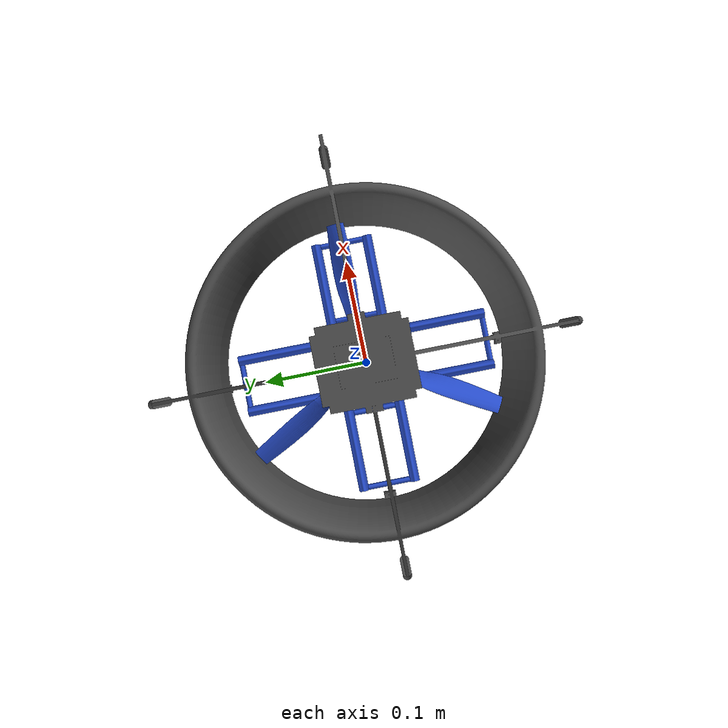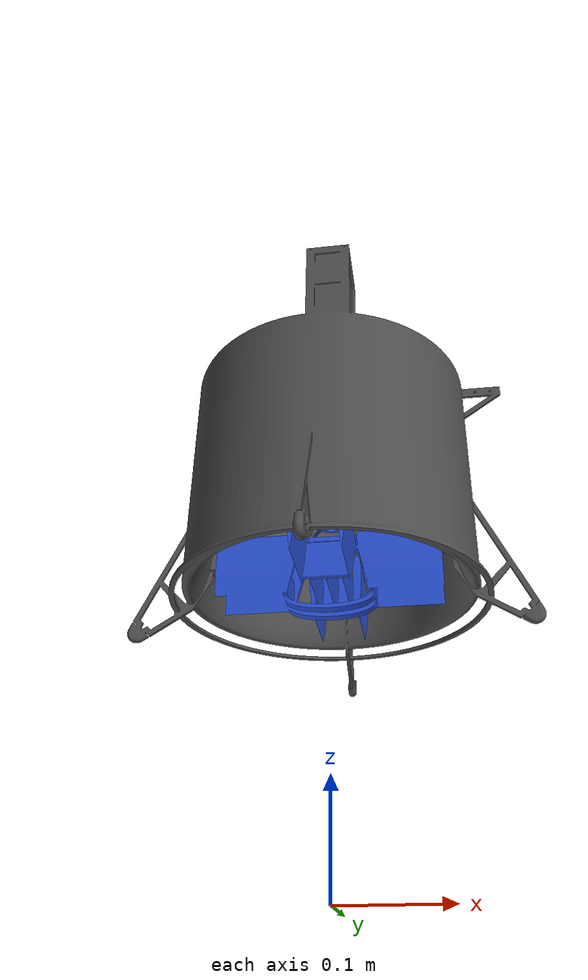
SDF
<?xml version='1.0' encoding='utf-8'?>
<sdf version="1.9">
  <model name="ductedfan2">
    <pose>0 0 0.5 0 0 0</pose>
    <link name="base_link">
      <pose>0 0 0 0 0 0</pose>
      <inertial>
        <mass>1.51082</mass>
        <inertia>
          <ixx>0.0276508</ixx>
          <ixy>0</ixy>
          <ixz>0.00026669</ixz>
          <iyy>0.0275263</iyy>
          <iyz>0.00028741</iyz>
          <izz>0.00619679</izz>
        </inertia>
        <pose>-4.1e-05 -7.6e-05 0.042069 0 -0 0</pose>
      </inertial>
      <collision name="base_link_collision">
        <geometry>
          <box>
            <size>0.25 0.25 0.52</size>
          </box>
        </geometry>
      </collision>
      <visual name="base_link_visual">
        <pose>0.0 0 -0.0 0 0 0</pose>
        <geometry>
          <mesh>
            <scale>1 1 1</scale>
            <uri>model://ductedfan2/meshes/DF - Product-gazebo-1.STL</uri>
          </mesh>
        </geometry>
        <material>
          <script>
            <name>Gazebo/DarkGrey</name>
            <uri>file://media/materials/scripts/gazebo.material</uri>
          </script>
        </material>
      </visual>
      <gravity>1</gravity>
      <velocity_decay />
      <self_collide>0</self_collide>
      <sensor name="imu_sensor" type="imu">
        <gz_frame_id>base_link</gz_frame_id>
        <always_on>1</always_on>
        <update_rate>250</update_rate>
        <imu>
          <angular_velocity>
            <x>
              <noise type="gaussian">
                <mean>0</mean>
                <stddev>0.0003394</stddev>
                <dynamic_bias_stddev>3.8785e-05</dynamic_bias_stddev>
                <dynamic_bias_correlation_time>1000</dynamic_bias_correlation_time>
              </noise>
            </x>
            <y>
              <noise type="gaussian">
                <mean>0</mean>
                <stddev>0.0003394</stddev>
                <dynamic_bias_stddev>3.8785e-05</dynamic_bias_stddev>
                <dynamic_bias_correlation_time>1000</dynamic_bias_correlation_time>
              </noise>
            </y>
            <z>
              <noise type="gaussian">
                <mean>0</mean>
                <stddev>0.0003394</stddev>
                <dynamic_bias_stddev>3.8785e-05</dynamic_bias_stddev>
                <dynamic_bias_correlation_time>1000</dynamic_bias_correlation_time>
              </noise>
            </z>
          </angular_velocity>
          <linear_acceleration>
            <x>
              <noise type="gaussian">
                <mean>0</mean>
                <stddev>0.004</stddev>
                <dynamic_bias_stddev>0.006</dynamic_bias_stddev>
                <dynamic_bias_correlation_time>300</dynamic_bias_correlation_time>
              </noise>
            </x>
            <y>
              <noise type="gaussian">
                <mean>0</mean>
                <stddev>0.004</stddev>
                <dynamic_bias_stddev>0.006</dynamic_bias_stddev>
                <dynamic_bias_correlation_time>300</dynamic_bias_correlation_time>
              </noise>
            </y>
            <z>
              <noise type="gaussian">
                <mean>0</mean>
                <stddev>0.004</stddev>
                <dynamic_bias_stddev>0.006</dynamic_bias_stddev>
                <dynamic_bias_correlation_time>300</dynamic_bias_correlation_time>
              </noise>
            </z>
          </linear_acceleration>
        </imu>
      </sensor>
      <sensor name="air_pressure_sensor" type="air_pressure">
        <gz_frame_id>base_link</gz_frame_id>
        <always_on>1</always_on>
        <update_rate>50</update_rate>
        <air_pressure>
          <pressure>
            <noise type="gaussian">
              <mean>0</mean>
              <stddev>0.01</stddev>
            </noise>
          </pressure>
        </air_pressure>
      </sensor>
      <sensor name="magnetometer_sensor" type="magnetometer">
        <gz_frame_id>base_link</gz_frame_id>
        <always_on>1</always_on>
        <update_rate>100</update_rate>
        <magnetometer>
          <x>
            <noise type="gaussian">
              <stddev>0.0001</stddev>
            </noise>
          </x>
          <y>
            <noise type="gaussian">
              <stddev>0.0001</stddev>
            </noise>
          </y>
          <z>
            <noise type="gaussian">
              <stddev>0.0001</stddev>
            </noise>
          </z>
        </magnetometer>
      </sensor>
      <sensor name="navsat_sensor" type="navsat">
        <gz_frame_id>base_link</gz_frame_id>
        <always_on>1</always_on>
        <update_rate>30</update_rate>
      </sensor>
    </link>
    <link name="imu_link">
      <pose>0 0 0 0 0 0</pose>
      <inertial>
        <pose>0 0 0 0 0 0</pose>
        <mass>0.015</mass>
        <inertia>
          <ixx>1e-05</ixx>
          <ixy>0</ixy>
          <ixz>0</ixz>
          <iyy>1e-05</iyy>
          <iyz>0</iyz>
          <izz>1e-05</izz>
        </inertia>
      </inertial>
    </link>
    <joint name="imu_joint" type="revolute">
      <child>imu_link</child>
      <parent>base_link</parent>
      <axis>
        <xyz>1 0 0</xyz>
        <limit>
          <lower>0</lower>
          <upper>0</upper>
          <effort>0</effort>
          <velocity>0</velocity>
        </limit>
        <dynamics>
          <spring_reference>0</spring_reference>
          <spring_stiffness>0</spring_stiffness>
        </dynamics>
      </axis>
    </joint>
    <link name="airspeed_link">
      <pose>0 0 0 0 0 0</pose>
      <inertial>
        <pose>0 0 0 0 0 0</pose>
        <mass>0.015</mass>
        <inertia>
          <ixx>1e-05</ixx>
          <ixy>0</ixy>
          <ixz>0</ixz>
          <iyy>1e-05</iyy>
          <iyz>0</iyz>
          <izz>1e-05</izz>
        </inertia>
      </inertial>
      <sensor name="air_speed" type="air_speed">
        <always_on>1</always_on>
        <update_rate>50</update_rate>
        <air_speed>
          <pressure>
            <noise type="gaussian">
              <mean>0</mean>
              <stddev>0.01</stddev>
            </noise>
          </pressure>
        </air_speed>
      </sensor>
    </link>
    <joint name="airspeed_joint" type="revolute">
      <child>airspeed_link</child>
      <parent>base_link</parent>
      <axis>
        <xyz>1 0 0</xyz>
        <limit>
          <lower>0</lower>
          <upper>0</upper>
          <effort>0</effort>
          <velocity>0</velocity>
        </limit>
        <dynamics>
          <spring_reference>0</spring_reference>
          <spring_stiffness>0</spring_stiffness>
        </dynamics>
      </axis>
    </joint>
    <link name="cspitch">
      <inertial>
        <mass>0.149682</mass>
        <inertia>
          <ixx>0.00066011</ixx>
          <ixy>0</ixy>
          <ixz>0</ixz>
          <iyy>8.5e-05</iyy>
          <iyz>0</iyz>
          <izz>0.000689</izz>
        </inertia>
        <pose>0.000401 0 -0.210756 0 -0 0</pose>
      </inertial>
      <pose>0 0 0 0 -0 0</pose>
      <gravity>1</gravity>
      <self_collide>0</self_collide>
      <kinematic>0</kinematic>
      <enable_wind>0</enable_wind>
      <visual name="visual">
        <pose>0 0 0 0 -0 0</pose>
        <geometry>
          <mesh>
            <uri>model://ductedfan2/meshes/DF - control surface-60-2-1.STL</uri>
            <scale>1 1 1</scale>
          </mesh>
        </geometry>
        <material>
          <script>
            <name>Gazebo/Blue</name>
            <uri>file://media/materials/scripts/gazebo.material</uri>
          </script>
        </material>
        <transparency>0</transparency>
        <cast_shadows>1</cast_shadows>
      </visual>
    </link>
    <link name="csroll">
      <inertial>
        <mass>0.138453</mass>
        <inertia>
          <ixx>9.877e-05</ixx>
          <ixy>0</ixy>
          <ixz>0</ixz>
          <iyy>0.00067119</iyy>
          <iyz>0</iyz>
          <izz>0.00068256</izz>
        </inertia>
        <pose>0 0.000824 -0.20992 0 -0 0</pose>
      </inertial>
      <pose>0 0 0 0 -0 0</pose>
      <gravity>1</gravity>
      <self_collide>0</self_collide>
      <kinematic>0</kinematic>
      <enable_wind>0</enable_wind>
      <visual name="visual">
        <pose>0 0 0 0 -0 0</pose>
        <geometry>
          <mesh>
            <uri>model://ductedfan2/meshes/DF - control surface-60-67-3.STL</uri>
            <scale>1 1 1</scale>
          </mesh>
        </geometry>
        <material>
          <script>
            <name>Gazebo/Blue</name>
            <uri>file://media/materials/scripts/gazebo.material</uri>
          </script>
        </material>
        <transparency>0</transparency>
        <cast_shadows>1</cast_shadows>
      </visual>
    </link>
    <link name="r1">
      <inertial>
        <mass>0.015678</mass>
        <inertia>
          <ixx>1.851e-05</ixx>
          <ixy>0</ixy>
          <ixz>0</ixz>
          <iyy>1.855e-05</iyy>
          <iyz>0</iyz>
          <izz>3.648e-05</izz>
        </inertia>
        <pose>0.000403 0.000759 -0.071513 0 -0 0</pose>
      </inertial>
      <pose>0 0 0 0 -0 0</pose>
      <gravity>1</gravity>
      <self_collide>0</self_collide>
      <kinematic>0</kinematic>
      <enable_wind>0</enable_wind>
      <visual name="visual">
        <pose>0 0 0 0 -0 0</pose>
        <geometry>
          <mesh>
            <uri>model://ductedfan2/meshes/DF - fan-1.STL</uri>
            <scale>1 1 1</scale>
          </mesh>
        </geometry>
        <material>
          <script>
            <name>Gazebo/Blue</name>
            <uri>file://media/materials/scripts/gazebo.material</uri>
          </script>
        </material>
        <transparency>0</transparency>
        <cast_shadows>1</cast_shadows>
      </visual>
    </link>
    <link name="r2">
      <inertial>
        <mass>0.015678</mass>
        <inertia>
          <ixx>1.851e-05</ixx>
          <ixy>0</ixy>
          <ixz>0</ixz>
          <iyy>1.855e-05</iyy>
          <iyz>0</iyz>
          <izz>3.648e-05</izz>
        </inertia>
        <pose>0.000403 0.000759 -0.154513 0 -0 0</pose>
      </inertial>
      <pose>0 0 0 0 -0 0</pose>
      <gravity>1</gravity>
      <self_collide>0</self_collide>
      <kinematic>0</kinematic>
      <enable_wind>0</enable_wind>
      <visual name="visual">
        <pose>0 0 0 0 -0 0</pose>
        <geometry>
          <mesh>
            <uri>model://ductedfan2/meshes/DF - fan-2.STL</uri>
            <scale>1 1 1</scale>
          </mesh>
        </geometry>
        <material>
          <script>
            <name>Gazebo/Blue</name>
            <uri>file://media/materials/scripts/gazebo.material</uri>
          </script>
        </material>
        <transparency>0</transparency>
        <cast_shadows>1</cast_shadows>
      </visual>
    </link>
    <joint name="cspitch_joint" type="revolute">
      <parent>base_link</parent>
      <child>cspitch</child>
      <pose>0.00037 0 -0.19763 0 -0 0</pose>
      <axis>
        <xyz>0 1 0</xyz>
        <limit>
          <lower>-0.35</lower>
          <upper>0.35</upper>
        </limit>
        <dynamics>
          <damping>1.0</damping>
          <friction>0.0</friction>
          <spring_reference>0</spring_reference>
          <spring_stiffness>0</spring_stiffness>
        </dynamics>
      </axis>
      <physics>
        <ode>
          <implicit_spring_damper>1</implicit_spring_damper>
        </ode>
      </physics>
    </joint>
    <joint name="csroll_joint" type="revolute">
      <parent>base_link</parent>
      <child>csroll</child>
      <pose>0 0.00074 -0.19763 0 -0 0</pose>
      <axis>
        <xyz>1 0 0</xyz>
        <limit>
          <lower>-0.35</lower>
          <upper>0.35</upper>
        </limit>
        <dynamics>
          <damping>1.0</damping>
          <friction>0.0</friction>
          <spring_reference>0</spring_reference>
          <spring_stiffness>0</spring_stiffness>
        </dynamics>
      </axis>
      <physics>
        <ode>
          <implicit_spring_damper>1</implicit_spring_damper>
        </ode>
      </physics>
    </joint>
    <joint name="r1_joint" type="revolute">
      <parent>base_link</parent>
      <child>r1</child>
      <pose>0.000403 0.000759 -0.071513 0 -0 0</pose>
      <axis>
        <xyz>0 0 1</xyz>
        <limit>
          <lower>-1e+16</lower>
          <upper>1e+16</upper>
          <effort>-1</effort>
          <velocity>-1</velocity>
        </limit>
        <dynamics>
          <spring_reference>0</spring_reference>
          <spring_stiffness>0</spring_stiffness>
          <damping>0.0001</damping>
          <friction>0</friction>
        </dynamics>
      </axis>
      <physics>
        <ode>
          <implicit_spring_damper>1</implicit_spring_damper>
        </ode>
      </physics>
    </joint>
    <joint name="r2_joint" type="revolute">
      <parent>base_link</parent>
      <child>r2</child>
      <pose>0.000403 0.000759 -0.154513 0 -0 0</pose>
      <axis>
        <xyz>0 0 1</xyz>
        <limit>
          <lower>-1e+16</lower>
          <upper>1e+16</upper>
          <effort>-1</effort>
          <velocity>-1</velocity>
        </limit>
        <dynamics>
          <spring_reference>0</spring_reference>
          <spring_stiffness>0</spring_stiffness>
          <damping>0.0001</damping>
          <friction>0</friction>
        </dynamics>
      </axis>
      <physics>
        <ode>
          <implicit_spring_damper>1</implicit_spring_damper>
        </ode>
      </physics>
    </joint>
    <plugin name="px4::DuctedFanLiftDrag" filename="libDuctedFanLiftDragPlugin.dylib">
      <propeller_wind_map>
        <propeller>
          <joint>r1_joint</joint>
          <k_v>0.018</k_v>
          <rotorVelocitySlowdownSim>20</rotorVelocitySlowdownSim>
        </propeller>
        <propeller>
          <joint>r2_joint</joint>
          <k_v>0.018</k_v>
          <rotorVelocitySlowdownSim>20</rotorVelocitySlowdownSim>
        </propeller>
        <wash_only>false</wash_only>
      </propeller_wind_map>
      <a0>0</a0>
      <cla>0</cla>
      <cda>0</cda>
      <cma>0</cma>
      <alpha_stall>0.6</alpha_stall>
      <cla_stall>0</cla_stall>
      <cda_stall>0.0</cda_stall>
      <cma_stall>0</cma_stall>
      <cp>0 0 -0.2497</cp>
      <area>0.0018</area>
      <air_density>1.2041</air_density>
      <forward>0 0 1</forward>
      <upward>0 -1 0</upward>
      <link_name>base_link</link_name>
      <topic_name>lift_force/cs1</topic_name>
      <control_joint_name>csroll_joint</control_joint_name>
      <control_joint_rad_to_cl>8</control_joint_rad_to_cl>
      <windSubTopic>world_wind</windSubTopic>
    </plugin>
    <plugin name="px4::DuctedFanLiftDrag" filename="libDuctedFanLiftDragPlugin.dylib">
      <propeller_wind_map>
        <propeller>
          <joint>r1_joint</joint>
          <k_v>0.018</k_v>
          <rotorVelocitySlowdownSim>20</rotorVelocitySlowdownSim>
        </propeller>
        <propeller>
          <joint>r2_joint</joint>
          <k_v>0.018</k_v>
          <rotorVelocitySlowdownSim>20</rotorVelocitySlowdownSim>
        </propeller>
        <wash_only>false</wash_only>
      </propeller_wind_map>
      <a0>0</a0>
      <cla>0</cla>
      <cda>0</cda>
      <cma>0</cma>
      <alpha_stall>0.6</alpha_stall>
      <cla_stall>0</cla_stall>
      <cda_stall>0.0</cda_stall>
      <cma_stall>0</cma_stall>
      <cp>0 0 -0.2497</cp>
      <area>0.0018</area>
      <air_density>1.2041</air_density>
      <forward>0 0 1</forward>
      <upward>1 0 0</upward>
      <link_name>base_link</link_name>
      <topic_name>lift_force/cs2</topic_name>
      <control_joint_name>cspitch_joint</control_joint_name>
      <control_joint_rad_to_cl>8</control_joint_rad_to_cl>
      <windSubTopic>world_wind</windSubTopic>
    </plugin>
    <plugin name="gz::sim::systems::MulticopterMotorModel" filename="gz-sim-multicopter-motor-model-system">
      <jointName>r1_joint</jointName>
      <linkName>r1</linkName>
      <turningDirection>cw</turningDirection>
      <timeConstantUp>0.0125</timeConstantUp>
      <timeConstantDown>0.025</timeConstantDown>
      <maxRotVelocity>2000</maxRotVelocity>
      <motorConstant>8.54858e-06</motorConstant>
      <momentConstant>0.01</momentConstant>
      <commandSubTopic>command/motor_speed</commandSubTopic>
      <motorNumber>0</motorNumber>
      <rotorDragCoefficient>8.06428e-05</rotorDragCoefficient>
      <rollingMomentCoefficient>1e-06</rollingMomentCoefficient>
      <rotorVelocitySlowdownSim>20</rotorVelocitySlowdownSim>
      <motorType>velocity</motorType>
    </plugin>
    <plugin name="gz::sim::systems::MulticopterMotorModel" filename="gz-sim-multicopter-motor-model-system">
      <jointName>r2_joint</jointName>
      <linkName>r2</linkName>
      <turningDirection>ccw</turningDirection>
      <timeConstantUp>0.0125</timeConstantUp>
      <timeConstantDown>0.025</timeConstantDown>
      <maxRotVelocity>2000</maxRotVelocity>
      <motorConstant>8.54858e-06</motorConstant>
      <momentConstant>0.01</momentConstant>
      <commandSubTopic>command/motor_speed</commandSubTopic>
      <motorNumber>1</motorNumber>
      <rotorDragCoefficient>8.06428e-05</rotorDragCoefficient>
      <rollingMomentCoefficient>1e-06</rollingMomentCoefficient>
      <rotorVelocitySlowdownSim>20</rotorVelocitySlowdownSim>
      <motorType>velocity</motorType>
    </plugin>
    <static>0</static>
    <plugin filename="gz-sim-joint-position-controller-system" name="gz::sim::systems::JointPositionController">
      <joint_name>csroll_joint</joint_name>
      <sub_topic>servo_0</sub_topic>
      <p_gain>10</p_gain>
      <i_gain>0</i_gain>
      <d_gain>0</d_gain>
    </plugin>
    <plugin filename="gz-sim-joint-position-controller-system" name="gz::sim::systems::JointPositionController">
      <joint_name>cspitch_joint</joint_name>
      <sub_topic>servo_1</sub_topic>
      <p_gain>10</p_gain>
      <i_gain>0</i_gain>
      <d_gain>0</d_gain>
    </plugin>
  </model>
</sdf>
